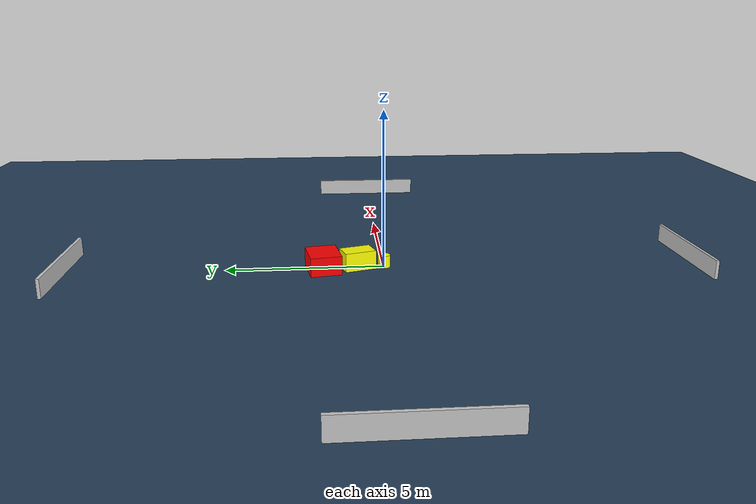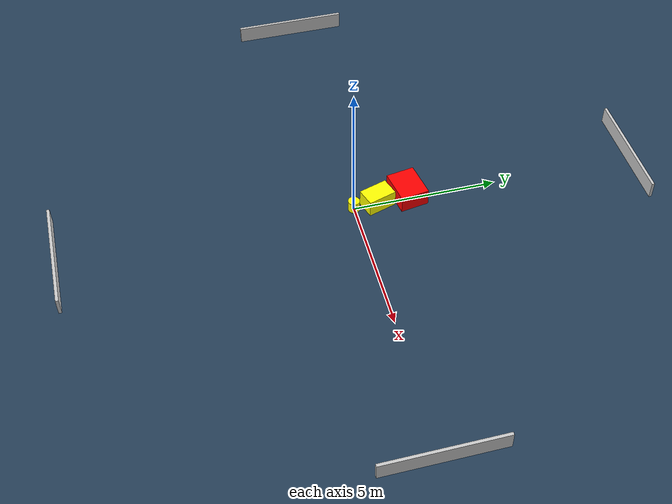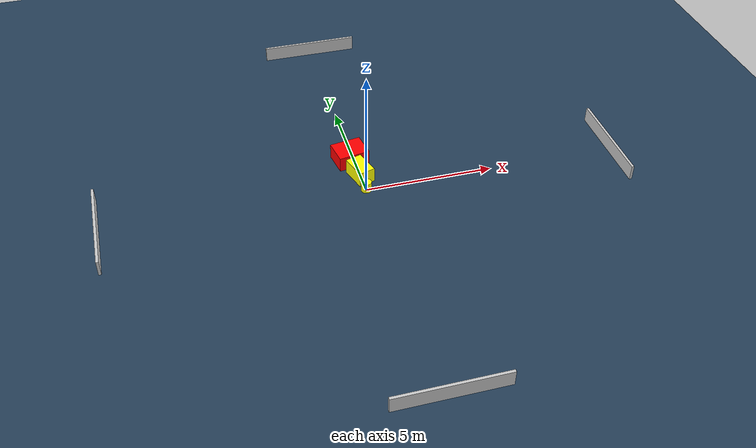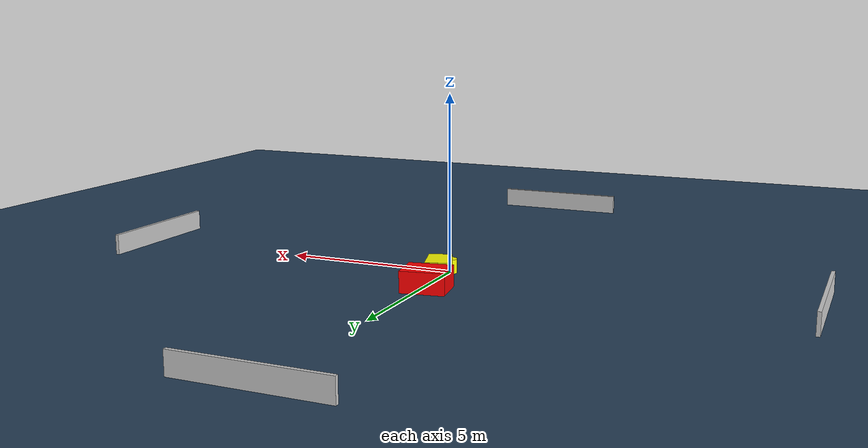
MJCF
<?xml version="1.0" ?>
<mujoco model="generated_environment">
  <option timestep="0.01" integrator="RK4" cone="elliptic"/>
  <default>
    <geom density="1"/>
  </default>
  <asset>
    <texture builtin="gradient" height="3072" name="skybox" rgb1="0.3 0.5 0.7" rgb2="0 0 0" type="skybox" width="512"/>
    <texture builtin="checker" height="300" name="groundplane" rgb1="0.2 0.3 0.4" rgb2="0.1 0.2 0.3" type="2d" width="300"/>
    <material name="groundplane" reflectance="0.2" texrepeat="5 5" texture="groundplane"/>
  </asset>
  <worldbody>
    <light dir="0 0 -1" directional="true" pos="0 0 1.5"/>
    <geom condim="3" friction="0.5 0.005 0.001" material="groundplane" name="floor" pos="0 0 0" size="0 0 0.05" type="plane"/>
    <body name="walls">
      <geom name="wall_1" condim="4" pos="-10.0 0.0 0.3" rgba="0.800000011920929 0.800000011920929 0.800000011920929 1.0" size="0.05 2.0 0.3" type="box"/>
      <geom name="wall_2" condim="4" pos="10.0 0.0 0.3" rgba="0.800000011920929 0.800000011920929 0.800000011920929 1.0" size="0.05 2.0 0.3" type="box"/>
      <geom name="wall_3" condim="4" pos="0.0 -10.0 0.3" rgba="0.800000011920929 0.800000011920929 0.800000011920929 1.0" size="2.0 0.05 0.3" type="box"/>
      <geom name="wall_4" condim="4" pos="0.0 10.0 0.3" rgba="0.800000011920929 0.800000011920929 0.800000011920929 1.0" size="2.0 0.05 0.3" type="box"/>
    </body>
    <body name="robot">
      <joint name="joint_x" type="slide" pos="0 0 0" axis="1 0 0"/>
      <joint name="joint_y" type="slide" pos="0 0 0" axis="0 1 0"/>
      <geom name="robot" type="cylinder" pos="0.0 0.0 0.2" size="0.2 0.2 0.0" mass="5.0" friction="1.0 0.005 0.0001" condim="4" rgba="1.0 1.0 0.0 1.0"/>
    </body>
    <body name="obstacle_1_movable">
      <geom name="obstacle_1_movable" condim="4" pos="-0.02178020617235414 0.8379517468146541 0.3" euler="0 0 17.493439967520587" friction="0.0 0.005 0.001" rgba="1.0 1.0 0.0 1.0" size="0.32738122967727423 0.5055310691542418 0.3" type="box" mass="0.1"/>
      <joint type="free"/>
    </body>
    <body name="obstacle_2_static">
      <geom name="obstacle_2_static" condim="4" pos="-0.15636444244253583 1.9284873415361878 0.3" euler="0 0 9.244259978242543" friction="0.0 0.005 0.001" rgba="1.0 0.0 0.0 1.0" size="0.6158340172299324 0.49392286115493117 0.3" type="box"/>
    </body>
  </worldbody>
  <actuator>
    <motor name="actuator_x" joint="joint_x" gear="1" ctrlrange="-1 1"/>
    <motor name="actuator_y" joint="joint_y" gear="1" ctrlrange="-1 1"/>
  </actuator>
</mujoco>
